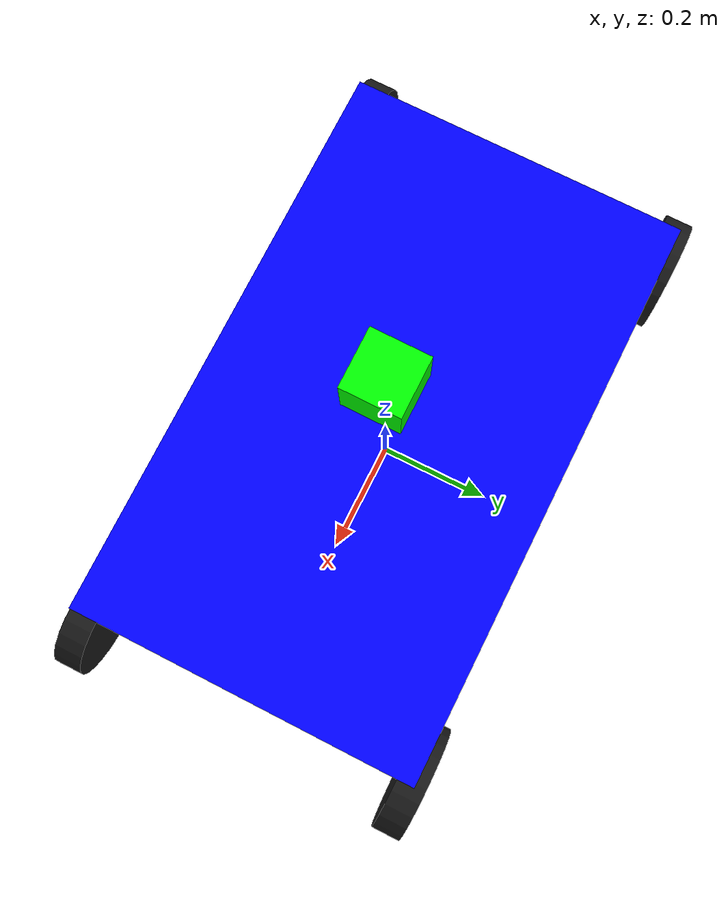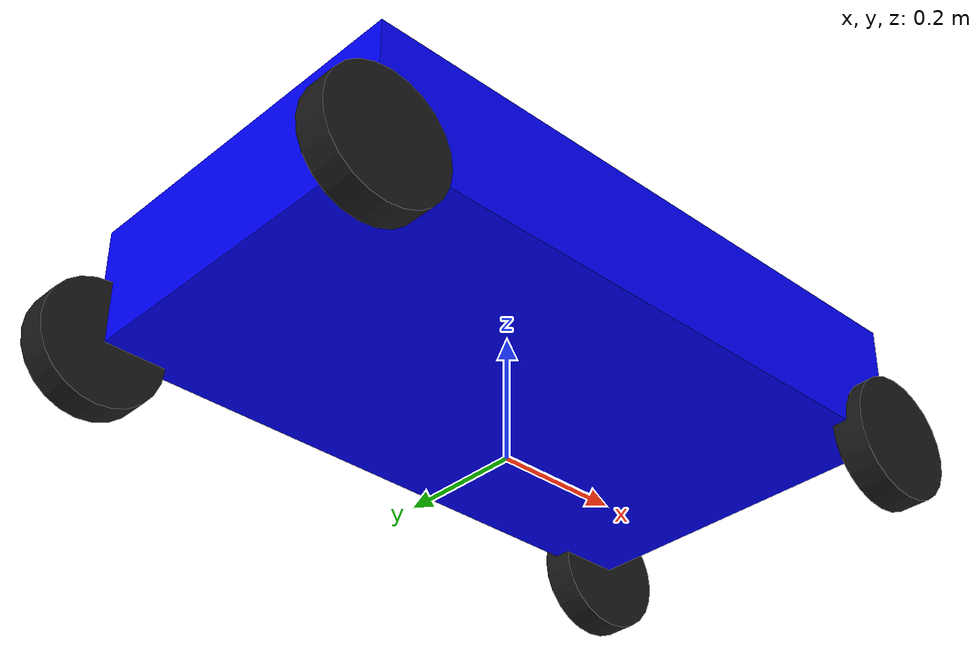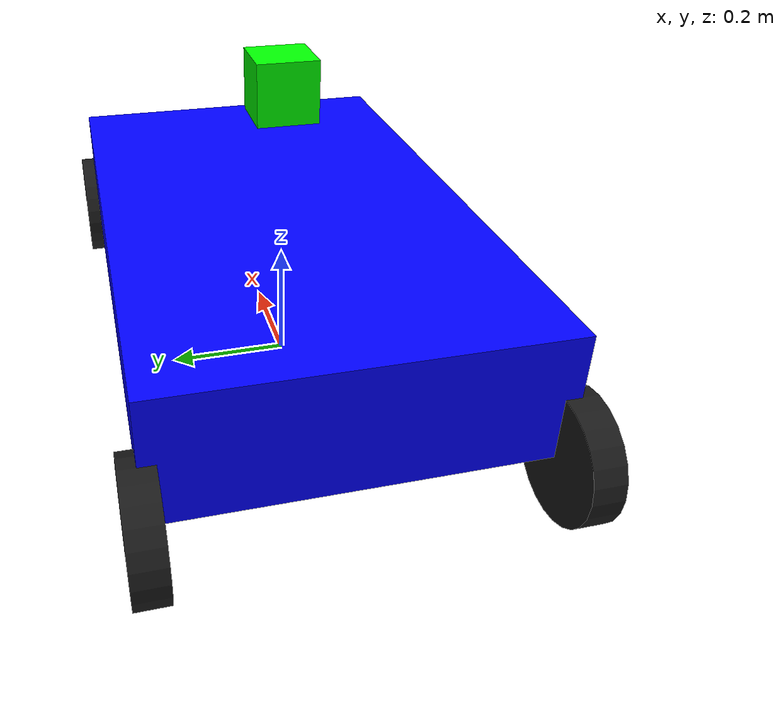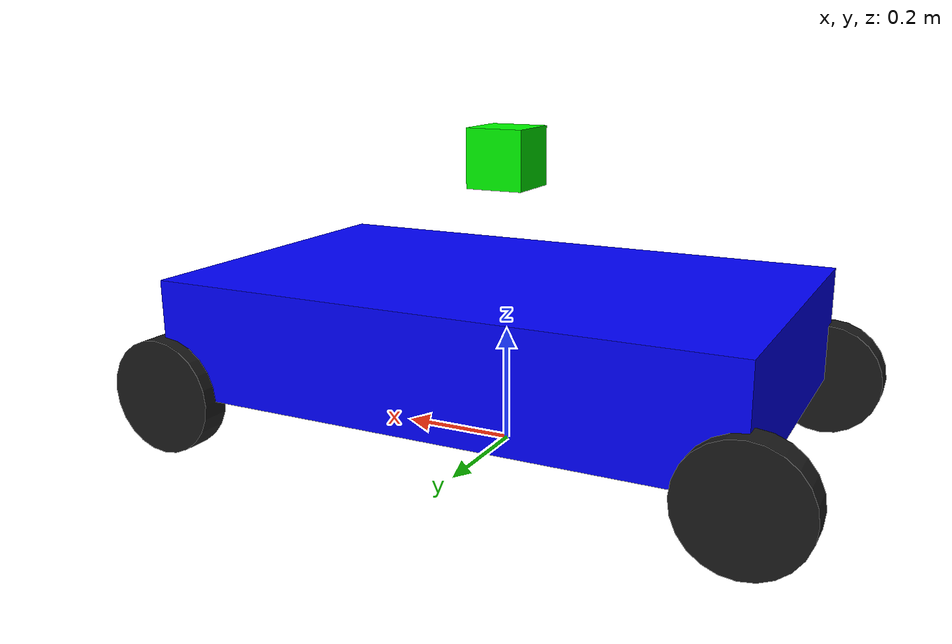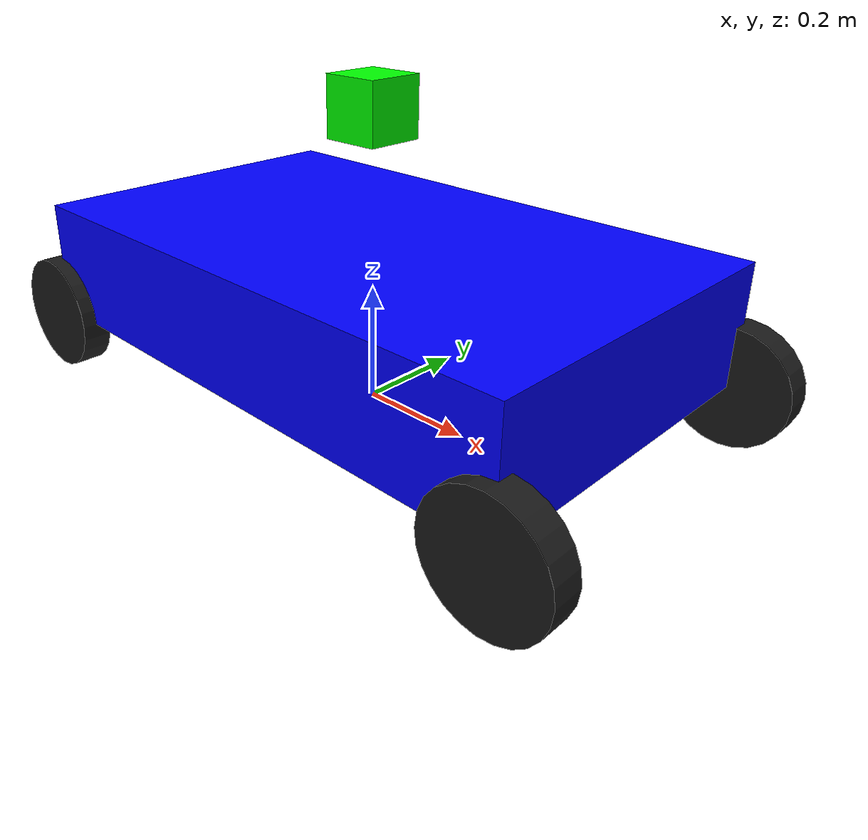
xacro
<?xml version="1.0"?>
<robot xmlns:xacro="http://www.ros.org/wiki/xacro" name="robot2" >
  <!-- Include the main robot description -->
  <xacro:include filename="$(find example)/ros2_control_description/robot2_description.xacro"/>

  <!-- Hardware and controllers for ros2_control -->
  <xacro:include filename="$(find example)/ros2_control_description/robot2.ros2_control.xacro"/>

  <xacro:Robot4Farmers_description/>

  <xacro:Robot4Farmers use_sim="false"/>

</robot>

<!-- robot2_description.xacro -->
<robot xmlns:xacro="http://www.ros.org/wiki/xacro">
    <xacro:macro name="Robot4Farmers_description" params="">
        <link name="base_link"/>
        <link name="chassis_link">
            <collision>
                <origin xyz="0.0 0.0 0.0" rpy="0.0 0.0 0.0"/>
                <geometry>
                    <box size="1.0 0.6 0.2"/>
                </geometry>
            </collision>
            <visual>
                <origin xyz="0.0 0.0 0.0" rpy="0.0 0.0 0.0"/>
                <geometry>
                    <box size="1.0 0.6 0.2"/>
                </geometry>
                <material name="blue">
                    <color rgba="0.0 0.0 1.0 1.0"/>
                </material>
            </visual>
            <inertial>
                <origin xyz="0.0 0.0 0.0" rpy="0.0 0.0 0.0"/>
                <mass value="10.0"/>
                <inertia ixx="0.1" ixy="0.0" ixz="0.0"
                         iyy="0.1" iyz="0.0" izz="0.1"/>
            </inertial>
        </link>

        <joint name="chassis_joint" type="fixed">
            <parent link="base_link"/>
            <child link="chassis_link"/>
            <origin xyz="0.0 0.0 0.2" rpy="0.0 0.0 0.0"/>
        </joint>

        <!-- Rear Wheels -->
        <!-- left real wheel -->
        <link name="left_rear_wheel">
            <visual>
                <origin xyz="0.0 0.0 0.0" rpy="1.5708 0.0 1.5708"/>
                <geometry>
                    <cylinder radius="0.1" length="0.05"/>
                </geometry>
                <material name="black">
                    <color rgba="0.1 0.1 0.1 1.0"/>
                </material>
            </visual>
            <collision>
                <origin xyz="0.0 0.0 0.0" rpy="1.5708 0.0 1.5708"/>
                <geometry>
                    <cylinder radius="0.1" length="0.05"/>
                </geometry>
            </collision>
            <inertial>
                <origin xyz="0.0 0.0 0.0" rpy="1.5708 0.0 1.5708"/>
                <mass value="1.0"/>
                <inertia ixx="0.01" ixy="0.0" ixz="0.0"
                         iyy="0.01" iyz="0.0" izz="0.01"/>
            </inertial>
        </link>

        <joint name="left_rear_wheel_joint" type="continuous">
            <parent link="chassis_link"/>
            <child link="left_rear_wheel"/>
            <origin xyz="-0.5 0.3 -0.1" rpy="0.0 0.0 1.5708"/>
            <axis xyz="1 0 0"/>
            <limit effort="10.0" velocity="5.0"/>
        </joint>

        <!-- right rear wheel -->
        <link name="right_rear_wheel">
            <visual>
                <origin xyz="0.0 0.0 0.0" rpy="1.5708 0.0 1.5708"/>
                <geometry>
                    <cylinder radius="0.1" length="0.05"/>
                </geometry>
                <material name="black">
                    <color rgba="0.1 0.1 0.1 1.0"/>
                </material>
            </visual>
            <collision>
                <origin xyz="0.0 0.0 0.0" rpy="1.5708 0.0 1.5708"/>
                <geometry>
                    <cylinder radius="0.1" length="0.05"/>
                </geometry>
            </collision>
            <inertial>
                <origin xyz="0.0 0.0 0.0" rpy="1.5708 0.0 1.5708"/>
                <mass value="1.0"/>
                <inertia ixx="0.01" ixy="0.0" ixz="0.0"
                         iyy="0.01" iyz="0.0" izz="0.01"/>
            </inertial>
        </link>
        <joint name="right_rear_wheel_joint" type="continuous">
            <parent link="chassis_link"/>
            <child link="right_rear_wheel"/>
            <origin xyz="-0.5 -0.3 -0.1" rpy="0.0 0.0 1.5708"/>
            <axis xyz="1 0 0"/>
            <limit effort="10.0" velocity="5.0"/>

        </joint>

        <!-- Front Wheels -->
        <!-- left front wheel -->
        <link name="left_front_wheel">
            <visual>
                <origin xyz="0.0 0.0 0.0" rpy="1.5708 0.0 1.5708"/>
                <geometry>
                    <cylinder radius="0.1" length="0.05"/>
                </geometry>
                <material name="black">
                    <color rgba="0.1 0.1 0.1 1.0"/>
                </material>
            </visual>
            <collision>
                <origin xyz="0.0 0.0 0.0" rpy="1.5708 0.0 1.5708"/>
                <geometry>
                    <cylinder radius="0.1" length="0.05"/>
                </geometry>
            </collision>
            <inertial>
                <origin xyz="0.0 0.0 0.0" rpy="1.5708 0.0 1.5708"/>
                <mass value="1.0"/>
                <inertia ixx="0.01" ixy="0.0" ixz="0.0"
                         iyy="0.01" iyz="0.0" izz="0.01"/>
            </inertial>
        </link>
        <joint name="left_front_wheel_joint" type="revolute">
            <parent link="chassis_link"/>
            <child link="left_front_wheel"/>
            <origin xyz="0.5 0.3 -0.1" rpy="0.0 0.0 1.5708"/>
            <axis xyz="0 0 1"/>
            <limit lower="-1.57" upper="1.57" effort="10.0" velocity="5.0"/>
        </joint>

        <!-- right front wheel -->
        <link name="right_front_wheel">
            <visual>
                <origin xyz="0.0 0.0 0.0" rpy="1.5708 0.0 1.5708"/>
                <geometry>
                    <cylinder radius="0.1" length="0.05"/>
                </geometry>
                <material name="black">
                    <color rgba="0.1 0.1 0.1 1.0"/>
                </material>
            </visual>
            <collision>
                <origin xyz="0.0 0.0 0.0" rpy="1.5708 0.0 1.5708"/>
                <geometry>
                    <cylinder radius="0.1" length="0.05"/>
                </geometry>
            </collision>
            <inertial>
                <origin xyz="0.0 0.0 0.0" rpy="1.5708 0.0 1.5708"/>
                <mass value="1.0"/>
                <inertia ixx="0.01" ixy="0.0" ixz="0.0"
                         iyy="0.01" iyz="0.0" izz="0.01"/>
            </inertial>
        </link>
        <joint name="right_front_wheel_joint" type="revolute">
            <parent link="chassis_link"/>
            <child link="right_front_wheel"/>
            <origin xyz="0.5 -0.3 -0.1" rpy="0.0 0.0 1.5708"/>
            <axis xyz="0 0 1"/>
            <limit lower="-1.57" upper="1.57" effort="10.0" velocity="5.0"/>
        </joint>

        <!-- GPS Sensor -->
        <link name="gps_link">
            <visual>
                <origin xyz="0.0 0.0 0.1" rpy="0.0 0.0 0.0"/>
                <geometry>
                    <box size="0.1 0.1 0.1"/>
                </geometry>
                <material name="green">
                    <color rgba="0.0 1.0 0.0 1.0"/>
                </material>
            </visual>
            <collision>
                <origin xyz="0.0 0.0 0.1" rpy="0.0 0.0 0.0"/>
                <geometry>
                    <box size="0.1 0.1 0.1"/>
                </geometry>
            </collision>
            <inertial>
                <origin xyz="0.0 0.0 0.1" rpy="0.0 0.0 0.0"/>
                <mass value="0.5"/>
                <inertia ixx="0.005" ixy="0.0" ixz="0.0"
                         iyy="0.005" iyz="0.0" izz="0.005"/>
            </inertial>
        </link>

        <joint name="gps_joint" type="fixed">
            <parent link="chassis_link"/>
            <child link="gps_link"/>
            <origin xyz="0.0 0.0 0.2" rpy="0.0 0.0 0.0"/>
        </joint>
    </xacro:macro>
</robot>
